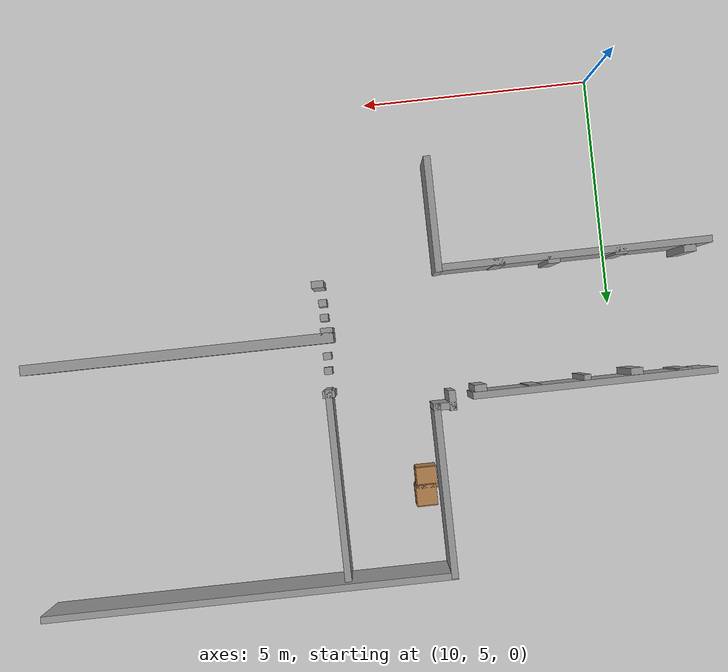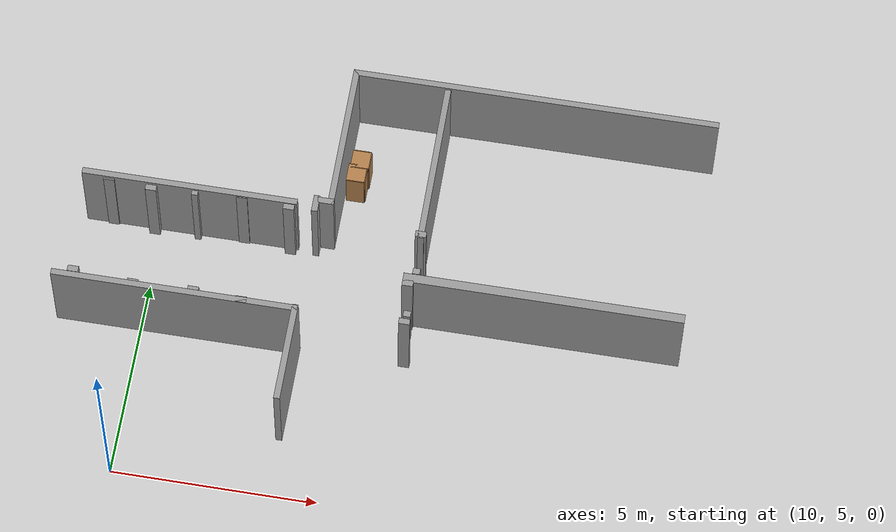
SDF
<sdf version="1.7">
 <world name="default">
  <model name="ground_plane">
   <static>1</static>
   <link name="link">
    <collision name="collision">
     <geometry><plane><normal>0 0 1</normal><size>100 100</size></plane></geometry>
     <surface>
      <contact><collide_bitmask>65535</collide_bitmask></contact>
      <friction><ode><mu>100</mu><mu2>50</mu2></ode></friction>
     </surface>
    </collision>
    <visual name="visual">
     <cast_shadows>0</cast_shadows>
     <geometry><plane><normal>0 0 1</normal><size>100 100</size></plane></geometry>
     <material>
      <script><uri>file://media/materials/scripts/gazebo.material</uri><name>Gazebo/Grey</name></script>
     </material>
    </visual>
   </link>
  </model>
  <model name="cabinet_clone_clone_1">
   <static>1</static>
   <link name="cabinet_bottom_plate">
    <inertial>
     <pose>0 0 -1 0 -0 0</pose>
     <inertia><ixx>2.05</ixx><ixy>0</ixy><ixz>0</ixz><iyy>2.05</iyy><iyz>0</iyz><izz>2.05</izz></inertia>
     <mass>25</mass>
    </inertial>
    <collision name="cabinet_bottom_plate_geom">
     <pose>0 0 0.01 0 -0 0</pose>
     <geometry><box><size>0.45 0.45 0.02</size></box></geometry>
    </collision>
    <visual name="cabinet_bottom_plate_geom_visual">
     <pose>0 0 0.01 0 -0 0</pose>
     <geometry><box><size>0.45 0.45 0.02</size></box></geometry>
     <material>
      <script><uri>file://media/materials/scripts/gazebo.material</uri><name>Gazebo/Wood</name></script>
     </material>
    </visual>
    <collision name="cabinet_bottom_plate_geom_cabinet_back_plate">
     <pose>0.235 0 0.51 0 -0 0</pose>
     <geometry><box><size>0.02 0.45 1.02</size></box></geometry>
    </collision>
    <visual name="cabinet_bottom_plate_geom_cabinet_back_plate_visual">
     <pose>0.235 0 0.51 0 -0 0</pose>
     <geometry><box><size>0.02 0.45 1.02</size></box></geometry>
     <material>
      <script><uri>file://media/materials/scripts/gazebo.material</uri><name>Gazebo/Wood</name></script>
     </material>
    </visual>
    <collision name="cabinet_bottom_plate_geom_cabinet_left_plate">
     <pose>0 0.235 0.51 0 -0 0</pose>
     <geometry><box><size>0.45 0.02 1.02</size></box></geometry>
    </collision>
    <visual name="cabinet_bottom_plate_geom_cabinet_left_plate_visual">
     <pose>0 0.235 0.51 0 -0 0</pose>
     <geometry><box><size>0.45 0.02 1.02</size></box></geometry>
     <material>
      <script><uri>file://media/materials/scripts/gazebo.material</uri><name>Gazebo/Wood</name></script>
     </material>
    </visual>
    <collision name="cabinet_bottom_plate_geom_cabinet_middle_plate">
     <pose>0 0 0.51 0 -0 0</pose>
     <geometry><box><size>0.45 0.45 0.02</size></box></geometry>
    </collision>
    <visual name="cabinet_bottom_plate_geom_cabinet_middle_plate_visual">
     <pose>0 0 0.51 0 -0 0</pose>
     <geometry><box><size>0.45 0.45 0.02</size></box></geometry>
     <material>
      <script><uri>file://media/materials/scripts/gazebo.material</uri><name>Gazebo/Wood</name></script>
     </material>
    </visual>
    <collision name="cabinet_bottom_plate_geom_cabinet_right_plate">
     <pose>0 -0.235 0.51 0 -0 0</pose>
     <geometry><box><size>0.45 0.02 1.02</size></box></geometry>
    </collision>
    <visual name="cabinet_bottom_plate_geom_cabinet_right_plate_visual">
     <pose>0 -0.235 0.51 0 -0 0</pose>
     <geometry><box><size>0.45 0.02 1.02</size></box></geometry>
     <material>
      <script><uri>file://media/materials/scripts/gazebo.material</uri><name>Gazebo/Wood</name></script>
     </material>
    </visual>
    <collision name="cabinet_bottom_plate_geom_cabinet_top_plate">
     <pose>0 0 1.01 0 -0 0</pose>
     <geometry><box><size>0.45 0.45 0.02</size></box></geometry>
    </collision>
    <visual name="cabinet_bottom_plate_geom_cabinet_top_plate_visual">
     <pose>0 0 1.01 0 -0 0</pose>
     <geometry><box><size>0.45 0.45 0.02</size></box></geometry>
     <material>
      <script><uri>file://media/materials/scripts/gazebo.material</uri><name>Gazebo/Wood</name></script>
     </material>
    </visual>
   </link>
   <pose>14.5476 13.8121 0 0 -0 0</pose>
  </model>
  <model name="cabinet_clone_clone_2">
   <static>1</static>
   <link name="cabinet_bottom_plate">
    <inertial>
     <pose>0 0 -1 0 -0 0</pose>
     <inertia><ixx>2.05</ixx><ixy>0</ixy><ixz>0</ixz><iyy>2.05</iyy><iyz>0</iyz><izz>2.05</izz></inertia>
     <mass>25</mass>
    </inertial>
    <collision name="cabinet_bottom_plate_geom">
     <pose>0 0 0.01 0 -0 0</pose>
     <geometry><box><size>0.45 0.45 0.02</size></box></geometry>
    </collision>
    <visual name="cabinet_bottom_plate_geom_visual">
     <pose>0 0 0.01 0 -0 0</pose>
     <geometry><box><size>0.45 0.45 0.02</size></box></geometry>
     <material>
      <script><uri>file://media/materials/scripts/gazebo.material</uri><name>Gazebo/Wood</name></script>
     </material>
    </visual>
    <collision name="cabinet_bottom_plate_geom_cabinet_back_plate">
     <pose>0.235 0 0.51 0 -0 0</pose>
     <geometry><box><size>0.02 0.45 1.02</size></box></geometry>
    </collision>
    <visual name="cabinet_bottom_plate_geom_cabinet_back_plate_visual">
     <pose>0.235 0 0.51 0 -0 0</pose>
     <geometry><box><size>0.02 0.45 1.02</size></box></geometry>
     <material>
      <script><uri>file://media/materials/scripts/gazebo.material</uri><name>Gazebo/Wood</name></script>
     </material>
    </visual>
    <collision name="cabinet_bottom_plate_geom_cabinet_left_plate">
     <pose>0 0.235 0.51 0 -0 0</pose>
     <geometry><box><size>0.45 0.02 1.02</size></box></geometry>
    </collision>
    <visual name="cabinet_bottom_plate_geom_cabinet_left_plate_visual">
     <pose>0 0.235 0.51 0 -0 0</pose>
     <geometry><box><size>0.45 0.02 1.02</size></box></geometry>
     <material>
      <script><uri>file://media/materials/scripts/gazebo.material</uri><name>Gazebo/Wood</name></script>
     </material>
    </visual>
    <collision name="cabinet_bottom_plate_geom_cabinet_middle_plate">
     <pose>0 0 0.51 0 -0 0</pose>
     <geometry><box><size>0.45 0.45 0.02</size></box></geometry>
    </collision>
    <visual name="cabinet_bottom_plate_geom_cabinet_middle_plate_visual">
     <pose>0 0 0.51 0 -0 0</pose>
     <geometry><box><size>0.45 0.45 0.02</size></box></geometry>
     <material>
      <script><uri>file://media/materials/scripts/gazebo.material</uri><name>Gazebo/Wood</name></script>
     </material>
    </visual>
    <collision name="cabinet_bottom_plate_geom_cabinet_right_plate">
     <pose>0 -0.235 0.51 0 -0 0</pose>
     <geometry><box><size>0.45 0.02 1.02</size></box></geometry>
    </collision>
    <visual name="cabinet_bottom_plate_geom_cabinet_right_plate_visual">
     <pose>0 -0.235 0.51 0 -0 0</pose>
     <geometry><box><size>0.45 0.02 1.02</size></box></geometry>
     <material>
      <script><uri>file://media/materials/scripts/gazebo.material</uri><name>Gazebo/Wood</name></script>
     </material>
    </visual>
    <collision name="cabinet_bottom_plate_geom_cabinet_top_plate">
     <pose>0 0 1.01 0 -0 0</pose>
     <geometry><box><size>0.45 0.45 0.02</size></box></geometry>
    </collision>
    <visual name="cabinet_bottom_plate_geom_cabinet_top_plate_visual">
     <pose>0 0 1.01 0 -0 0</pose>
     <geometry><box><size>0.45 0.45 0.02</size></box></geometry>
     <material>
      <script><uri>file://media/materials/scripts/gazebo.material</uri><name>Gazebo/Wood</name></script>
     </material>
    </visual>
   </link>
   <pose>14.5091 13.4246 0 0 -0 0</pose>
  </model>
  <model name="unit_box_clone_1_clone_0_clone_0_clone_2">
   <pose>16.3819 9.68374 0.64423 0 0 -0.000198</pose>
   <link name="link">
    <inertial>
     <mass>1</mass>
     <inertia>
      <ixx>0.166667</ixx>
      <ixy>0</ixy>
      <ixz>0</ixz>
      <iyy>0.166667</iyy>
      <iyz>0</iyz>
      <izz>0.166667</izz>
     </inertia>
    </inertial>
    <collision name="collision"><geometry><box><size>0.179333 0.158753 1.28846</size></box></geometry></collision>
    <visual name="visual">
     <geometry><box><size>0.179333 0.158753 1.28846</size></box></geometry>
     <material>
      <script><name>Gazebo/Grey</name><uri>file://media/materials/scripts/gazebo.material</uri></script>
     </material>
    </visual>
   </link>
  </model>
  <model name="unit_box_clone_1_clone_0_clone_0_clone_3">
   <pose>16.3832 9.36059 0.64423 0 0 -0.000198</pose>
   <link name="link">
    <inertial>
     <mass>1</mass>
     <inertia>
      <ixx>0.166667</ixx>
      <ixy>0</ixy>
      <ixz>0</ixz>
      <iyy>0.166667</iyy>
      <iyz>0</iyz>
      <izz>0.166667</izz>
     </inertia>
    </inertial>
    <collision name="collision"><geometry><box><size>0.179333 0.158753 1.28846</size></box></geometry></collision>
    <visual name="visual">
     <geometry><box><size>0.179333 0.158753 1.28846</size></box></geometry>
     <material>
      <script><name>Gazebo/Grey</name><uri>file://media/materials/scripts/gazebo.material</uri></script>
     </material>
    </visual>
   </link>
  </model>
  <model name="unit_box_clone_1_clone_0_clone_0_clone_4">
   <pose>16.4181 10.8551 0.64423 0 0 -0.000198</pose>
   <link name="link">
    <inertial>
     <mass>1</mass>
     <inertia>
      <ixx>0.166667</ixx>
      <ixy>0</ixy>
      <ixz>0</ixz>
      <iyy>0.166667</iyy>
      <iyz>0</iyz>
      <izz>0.166667</izz>
     </inertia>
    </inertial>
    <collision name="collision"><geometry><box><size>0.179333 0.158753 1.28846</size></box></geometry></collision>
    <visual name="visual">
     <geometry><box><size>0.179333 0.158753 1.28846</size></box></geometry>
     <material>
      <script><name>Gazebo/Grey</name><uri>file://media/materials/scripts/gazebo.material</uri></script>
     </material>
    </visual>
   </link>
  </model>
  <model name="unit_box_clone_1_clone_0_clone_0_clone_5">
   <pose>16.4031 10.5311 0.64423 0 0 -0.000198</pose>
   <link name="link">
    <inertial>
     <mass>1</mass>
     <inertia>
      <ixx>0.166667</ixx>
      <ixy>0</ixy>
      <ixz>0</ixz>
      <iyy>0.166667</iyy>
      <iyz>0</iyz>
      <izz>0.166667</izz>
     </inertia>
    </inertial>
    <collision name="collision"><geometry><box><size>0.179333 0.158753 1.28846</size></box></geometry></collision>
    <visual name="visual">
     <geometry><box><size>0.179333 0.158753 1.28846</size></box></geometry>
     <material>
      <script><name>Gazebo/Grey</name><uri>file://media/materials/scripts/gazebo.material</uri></script>
     </material>
    </visual>
   </link>
  </model>
  <model name="rastech_map_03">
   <link name="Wall_26">
    <pose>5.28336 2.73832 0 0 -0 1.5708</pose>
    <visual name="Wall_26_Visual">
     <pose>0 0 1.25 0 -0 0</pose>
     <geometry><box><size>2.5 0.15 2.5</size></box></geometry>
     <material>
      <script><uri>file://media/materials/scripts/gazebo.material</uri><name>Gazebo/Grey</name></script>
      <ambient>1 1 1 1</ambient>
      <shader type="pixel"/>
     </material>
     <meta><layer>0</layer></meta>
    </visual>
    <collision name="Wall_26_Collision">
     <pose>0 0 1.25 0 -0 0</pose>
     <geometry><box><size>2.5 0.15 2.5</size></box></geometry>
     <surface>
      <friction>
       <ode><mu>1</mu><mu2>1</mu2><fdir1>0 0 0</fdir1><slip1>0</slip1><slip2>0</slip2></ode>
       <torsional>
        <coefficient>1</coefficient>
        <patch_radius>0</patch_radius>
        <surface_radius>0</surface_radius>
        <use_patch_radius>1</use_patch_radius>
        <ode><slip>0</slip></ode>
       </torsional>
      </friction>
      <bounce><restitution_coefficient>0</restitution_coefficient><threshold>1e+06</threshold></bounce>
      <contact>
       <collide_without_contact>0</collide_without_contact>
       <collide_without_contact_bitmask>1</collide_without_contact_bitmask>
       <collide_bitmask>1</collide_bitmask>
       <ode>
        <soft_cfm>0</soft_cfm>
        <soft_erp>0.2</soft_erp>
        <kp>1e+13</kp>
        <kd>1</kd>
        <max_vel>0.01</max_vel>
        <min_depth>0</min_depth>
       </ode>
       <bullet>
        <split_impulse>1</split_impulse>
        <split_impulse_penetration_threshold>-0.01</split_impulse_penetration_threshold>
        <soft_cfm>0</soft_cfm>
        <soft_erp>0.2</soft_erp>
        <kp>1e+13</kp>
        <kd>1</kd>
       </bullet>
      </contact>
     </surface>
    </collision>
   </link>
   <link name="Wall_27">
    <pose>3.98347 3.91331 0 0 -0 3.14159</pose>
    <inertial>
     <inertia><ixx>0</ixx><ixy>0</ixy><ixz>0</ixz><iyy>0</iyy><iyz>0</iyz><izz>0</izz></inertia>
     <mass>0</mass>
    </inertial>
    <visual name="Wall_27_Visual">
     <pose>0 0 1.25 0 -0 0</pose>
     <geometry><box><size>0.265883 0.15 2.5</size></box></geometry>
     <material>
      <script><uri>file://media/materials/scripts/gazebo.material</uri><name>Gazebo/Grey</name></script>
      <ambient>1 1 1 1</ambient>
      <shader type="pixel"/>
     </material>
     <meta><layer>0</layer></meta>
    </visual>
    <collision name="Wall_27_Collision">
     <pose>0 0 1.25 0 -0 0</pose>
     <geometry><box><size>0.265883 0.15 2.5</size></box></geometry>
     <surface>
      <friction>
       <ode><mu>1</mu><mu2>1</mu2><fdir1>0 0 0</fdir1><slip1>0</slip1><slip2>0</slip2></ode>
       <torsional>
        <coefficient>1</coefficient>
        <patch_radius>0</patch_radius>
        <surface_radius>0</surface_radius>
        <use_patch_radius>1</use_patch_radius>
        <ode><slip>0</slip></ode>
       </torsional>
      </friction>
      <bounce><restitution_coefficient>0</restitution_coefficient><threshold>1e+06</threshold></bounce>
      <contact>
       <collide_without_contact>0</collide_without_contact>
       <collide_without_contact_bitmask>1</collide_without_contact_bitmask>
       <collide_bitmask>1</collide_bitmask>
       <ode>
        <soft_cfm>0</soft_cfm>
        <soft_erp>0.2</soft_erp>
        <kp>1e+13</kp>
        <kd>1</kd>
        <max_vel>0.01</max_vel>
        <min_depth>0</min_depth>
       </ode>
       <bullet>
        <split_impulse>1</split_impulse>
        <split_impulse_penetration_threshold>-0.01</split_impulse_penetration_threshold>
        <soft_cfm>0</soft_cfm>
        <soft_erp>0.2</soft_erp>
        <kp>1e+13</kp>
        <kd>1</kd>
       </bullet>
      </contact>
     </surface>
    </collision>
   </link>
   <link name="Wall_27_clone">
    <pose>1.35341 3.94617 0 0 -0 3.14159</pose>
    <inertial>
     <inertia><ixx>0</ixx><ixy>0</ixy><ixz>0</ixz><iyy>0</iyy><iyz>0</iyz><izz>0</izz></inertia>
     <mass>0</mass>
    </inertial>
    <visual name="Wall_27_Visual">
     <pose>0 0 1.25 0 -0 0</pose>
     <geometry><box><size>0.265883 0.15 2.5</size></box></geometry>
     <material>
      <script><uri>file://media/materials/scripts/gazebo.material</uri><name>Gazebo/Grey</name></script>
      <ambient>1 1 1 1</ambient>
      <shader type="pixel"/>
     </material>
     <meta><layer>0</layer></meta>
    </visual>
    <collision name="Wall_27_Collision">
     <pose>0 0 1.25 0 -0 0</pose>
     <geometry><box><size>0.265883 0.15 2.5</size></box></geometry>
     <surface>
      <friction>
       <ode><mu>1</mu><mu2>1</mu2><fdir1>0 0 0</fdir1><slip1>0</slip1><slip2>0</slip2></ode>
       <torsional>
        <coefficient>1</coefficient>
        <patch_radius>0</patch_radius>
        <surface_radius>0</surface_radius>
        <use_patch_radius>1</use_patch_radius>
        <ode><slip>0</slip></ode>
       </torsional>
      </friction>
      <bounce><restitution_coefficient>0</restitution_coefficient><threshold>1e+06</threshold></bounce>
      <contact>
       <collide_without_contact>0</collide_without_contact>
       <collide_without_contact_bitmask>1</collide_without_contact_bitmask>
       <collide_bitmask>1</collide_bitmask>
       <ode>
        <soft_cfm>0</soft_cfm>
        <soft_erp>0.2</soft_erp>
        <kp>1e+13</kp>
        <kd>1</kd>
        <max_vel>0.01</max_vel>
        <min_depth>0</min_depth>
       </ode>
       <bullet>
        <split_impulse>1</split_impulse>
        <split_impulse_penetration_threshold>-0.01</split_impulse_penetration_threshold>
        <soft_cfm>0</soft_cfm>
        <soft_erp>0.2</soft_erp>
        <kp>1e+13</kp>
        <kd>1</kd>
       </bullet>
      </contact>
     </surface>
    </collision>
   </link>
   <link name="Wall_27_clone_0">
    <pose>2.36192 3.89981 0 0 -0 3.14159</pose>
    <inertial>
     <inertia><ixx>0</ixx><ixy>0</ixy><ixz>0</ixz><iyy>0</iyy><iyz>0</iyz><izz>0</izz></inertia>
     <mass>0</mass>
    </inertial>
    <visual name="Wall_27_Visual">
     <pose>0 0 1.25 0 -0 0</pose>
     <geometry><box><size>5.95009 0.15 2.5</size></box></geometry>
     <material>
      <script><uri>file://media/materials/scripts/gazebo.material</uri><name>Gazebo/Grey</name></script>
      <ambient>1 1 1 1</ambient>
      <shader type="pixel"/>
     </material>
     <meta><layer>0</layer></meta>
    </visual>
    <collision name="Wall_27_Collision">
     <pose>0 0 1.25 0 -0 0</pose>
     <geometry><box><size>5.95009 0.15 2.5</size></box></geometry>
     <surface>
      <friction>
       <ode><mu>1</mu><mu2>1</mu2><fdir1>0 0 0</fdir1><slip1>0</slip1><slip2>0</slip2></ode>
       <torsional>
        <coefficient>1</coefficient>
        <patch_radius>0</patch_radius>
        <surface_radius>0</surface_radius>
        <use_patch_radius>1</use_patch_radius>
        <ode><slip>0</slip></ode>
       </torsional>
      </friction>
      <bounce><restitution_coefficient>0</restitution_coefficient><threshold>1e+06</threshold></bounce>
      <contact>
       <collide_without_contact>0</collide_without_contact>
       <collide_without_contact_bitmask>1</collide_without_contact_bitmask>
       <collide_bitmask>1</collide_bitmask>
       <ode>
        <soft_cfm>0</soft_cfm>
        <soft_erp>0.2</soft_erp>
        <kp>1e+13</kp>
        <kd>1</kd>
        <max_vel>0.01</max_vel>
        <min_depth>0</min_depth>
       </ode>
       <bullet>
        <split_impulse>1</split_impulse>
        <split_impulse_penetration_threshold>-0.01</split_impulse_penetration_threshold>
        <soft_cfm>0</soft_cfm>
        <soft_erp>0.2</soft_erp>
        <kp>1e+13</kp>
        <kd>1</kd>
       </bullet>
      </contact>
     </surface>
    </collision>
   </link>
   <link name="Wall_27_clone_1">
    <pose>2.81168 3.98758 0 0 -0 3.14159</pose>
    <inertial>
     <inertia><ixx>0</ixx><ixy>0</ixy><ixz>0</ixz><iyy>0</iyy><iyz>0</iyz><izz>0</izz></inertia>
     <mass>0</mass>
    </inertial>
    <visual name="Wall_27_Visual">
     <pose>0 0 1.25 0 -0 0</pose>
     <geometry><box><size>0.265883 0.15 2.5</size></box></geometry>
     <material>
      <script><uri>file://media/materials/scripts/gazebo.material</uri><name>Gazebo/Grey</name></script>
      <ambient>1 1 1 1</ambient>
      <shader type="pixel"/>
     </material>
     <meta><layer>0</layer></meta>
    </visual>
    <collision name="Wall_27_Collision">
     <pose>0 0 1.25 0 -0 0</pose>
     <geometry><box><size>0.265883 0.15 2.5</size></box></geometry>
     <surface>
      <friction>
       <ode><mu>1</mu><mu2>1</mu2><fdir1>0 0 0</fdir1><slip1>0</slip1><slip2>0</slip2></ode>
       <torsional>
        <coefficient>1</coefficient>
        <patch_radius>0</patch_radius>
        <surface_radius>0</surface_radius>
        <use_patch_radius>1</use_patch_radius>
        <ode><slip>0</slip></ode>
       </torsional>
      </friction>
      <bounce><restitution_coefficient>0</restitution_coefficient><threshold>1e+06</threshold></bounce>
      <contact>
       <collide_without_contact>0</collide_without_contact>
       <collide_without_contact_bitmask>1</collide_without_contact_bitmask>
       <collide_bitmask>1</collide_bitmask>
       <ode>
        <soft_cfm>0</soft_cfm>
        <soft_erp>0.2</soft_erp>
        <kp>1e+13</kp>
        <kd>1</kd>
        <max_vel>0.01</max_vel>
        <min_depth>0</min_depth>
       </ode>
       <bullet>
        <split_impulse>1</split_impulse>
        <split_impulse_penetration_threshold>-0.01</split_impulse_penetration_threshold>
        <soft_cfm>0</soft_cfm>
        <soft_erp>0.2</soft_erp>
        <kp>1e+13</kp>
        <kd>1</kd>
       </bullet>
      </contact>
     </surface>
    </collision>
   </link>
   <link name="Wall_27_clone_2">
    <pose>-0.109983 4.05501 0 0 -0 3.14159</pose>
    <inertial>
     <inertia><ixx>0</ixx><ixy>0</ixy><ixz>0</ixz><iyy>0</iyy><iyz>0</iyz><izz>0</izz></inertia>
     <mass>0</mass>
    </inertial>
    <visual name="Wall_27_Visual">
     <pose>0 0 1.25 0 -0 0</pose>
     <geometry><box><size>0.265883 0.15 2.5</size></box></geometry>
     <material>
      <script><uri>file://media/materials/scripts/gazebo.material</uri><name>Gazebo/Grey</name></script>
      <ambient>1 1 1 1</ambient>
      <shader type="pixel"/>
     </material>
     <meta><layer>0</layer></meta>
    </visual>
    <collision name="Wall_27_Collision">
     <pose>0 0 1.25 0 -0 0</pose>
     <geometry><box><size>0.265883 0.15 2.5</size></box></geometry>
     <surface>
      <friction>
       <ode><mu>1</mu><mu2>1</mu2><fdir1>0 0 0</fdir1><slip1>0</slip1><slip2>0</slip2></ode>
       <torsional>
        <coefficient>1</coefficient>
        <patch_radius>0</patch_radius>
        <surface_radius>0</surface_radius>
        <use_patch_radius>1</use_patch_radius>
        <ode><slip>0</slip></ode>
       </torsional>
      </friction>
      <bounce><restitution_coefficient>0</restitution_coefficient><threshold>1e+06</threshold></bounce>
      <contact>
       <collide_without_contact>0</collide_without_contact>
       <collide_without_contact_bitmask>1</collide_without_contact_bitmask>
       <collide_bitmask>1</collide_bitmask>
       <ode>
        <soft_cfm>0</soft_cfm>
        <soft_erp>0.2</soft_erp>
        <kp>1e+13</kp>
        <kd>1</kd>
        <max_vel>0.01</max_vel>
        <min_depth>0</min_depth>
       </ode>
       <bullet>
        <split_impulse>1</split_impulse>
        <split_impulse_penetration_threshold>-0.01</split_impulse_penetration_threshold>
        <soft_cfm>0</soft_cfm>
        <soft_erp>0.2</soft_erp>
        <kp>1e+13</kp>
        <kd>1</kd>
       </bullet>
      </contact>
     </surface>
    </collision>
   </link>
   <link name="Wall_27_clone_3">
    <pose>4.66104 6.5577 0 0 -0 3.14159</pose>
    <inertial>
     <inertia><ixx>0</ixx><ixy>0</ixy><ixz>0</ixz><iyy>0</iyy><iyz>0</iyz><izz>0</izz></inertia>
     <mass>0</mass>
    </inertial>
    <visual name="Wall_27_Visual">
     <pose>0 0 1.25 0 -0 0</pose>
     <geometry><box><size>0.265883 0.15 2.5</size></box></geometry>
     <material>
      <script><uri>file://media/materials/scripts/gazebo.material</uri><name>Gazebo/Grey</name></script>
      <ambient>1 1 1 1</ambient>
      <shader type="pixel"/>
     </material>
     <meta><layer>0</layer></meta>
    </visual>
    <collision name="Wall_27_Collision">
     <pose>0 0 1.25 0 -0 0</pose>
     <geometry><box><size>0.265883 0.15 2.5</size></box></geometry>
     <surface>
      <friction>
       <ode><mu>1</mu><mu2>1</mu2><fdir1>0 0 0</fdir1><slip1>0</slip1><slip2>0</slip2></ode>
       <torsional>
        <coefficient>1</coefficient>
        <patch_radius>0</patch_radius>
        <surface_radius>0</surface_radius>
        <use_patch_radius>1</use_patch_radius>
        <ode><slip>0</slip></ode>
       </torsional>
      </friction>
      <bounce><restitution_coefficient>0</restitution_coefficient><threshold>1e+06</threshold></bounce>
      <contact>
       <collide_without_contact>0</collide_without_contact>
       <collide_without_contact_bitmask>1</collide_without_contact_bitmask>
       <collide_bitmask>1</collide_bitmask>
       <ode>
        <soft_cfm>0</soft_cfm>
        <soft_erp>0.2</soft_erp>
        <kp>1e+13</kp>
        <kd>1</kd>
        <max_vel>0.01</max_vel>
        <min_depth>0</min_depth>
       </ode>
       <bullet>
        <split_impulse>1</split_impulse>
        <split_impulse_penetration_threshold>-0.01</split_impulse_penetration_threshold>
        <soft_cfm>0</soft_cfm>
        <soft_erp>0.2</soft_erp>
        <kp>1e+13</kp>
        <kd>1</kd>
       </bullet>
      </contact>
     </surface>
    </collision>
   </link>
   <link name="Wall_27_clone_4">
    <pose>3.49772 6.67842 0 0 -0 3.14159</pose>
    <inertial>
     <inertia><ixx>0</ixx><ixy>0</ixy><ixz>0</ixz><iyy>0</iyy><iyz>0</iyz><izz>0</izz></inertia>
     <mass>0</mass>
    </inertial>
    <visual name="Wall_27_Visual">
     <pose>0 0 1.25 0 -0 0</pose>
     <geometry><box><size>0.265883 0.15 2.5</size></box></geometry>
     <material>
      <script><uri>file://media/materials/scripts/gazebo.material</uri><name>Gazebo/Grey</name></script>
      <ambient>1 1 1 1</ambient>
      <shader type="pixel"/>
     </material>
     <meta><layer>0</layer></meta>
    </visual>
    <collision name="Wall_27_Collision">
     <pose>0 0 1.25 0 -0 0</pose>
     <geometry><box><size>0.265883 0.15 2.5</size></box></geometry>
     <surface>
      <friction>
       <ode><mu>1</mu><mu2>1</mu2><fdir1>0 0 0</fdir1><slip1>0</slip1><slip2>0</slip2></ode>
       <torsional>
        <coefficient>1</coefficient>
        <patch_radius>0</patch_radius>
        <surface_radius>0</surface_radius>
        <use_patch_radius>1</use_patch_radius>
        <ode><slip>0</slip></ode>
       </torsional>
      </friction>
      <bounce><restitution_coefficient>0</restitution_coefficient><threshold>1e+06</threshold></bounce>
      <contact>
       <collide_without_contact>0</collide_without_contact>
       <collide_without_contact_bitmask>1</collide_without_contact_bitmask>
       <collide_bitmask>1</collide_bitmask>
       <ode>
        <soft_cfm>0</soft_cfm>
        <soft_erp>0.2</soft_erp>
        <kp>1e+13</kp>
        <kd>1</kd>
        <max_vel>0.01</max_vel>
        <min_depth>0</min_depth>
       </ode>
       <bullet>
        <split_impulse>1</split_impulse>
        <split_impulse_penetration_threshold>-0.01</split_impulse_penetration_threshold>
        <soft_cfm>0</soft_cfm>
        <soft_erp>0.2</soft_erp>
        <kp>1e+13</kp>
        <kd>1</kd>
       </bullet>
      </contact>
     </surface>
    </collision>
   </link>
   <link name="Wall_27_clone_4_clone">
    <pose>7.90875 6.34816 0 0 -0 3.14159</pose>
    <inertial>
     <inertia><ixx>0</ixx><ixy>0</ixy><ixz>0</ixz><iyy>0</iyy><iyz>0</iyz><izz>0</izz></inertia>
     <mass>0</mass>
    </inertial>
    <visual name="Wall_27_Visual">
     <pose>0 0 1.25 0 -0 0</pose>
     <geometry><box><size>0.265883 0.15 2.5</size></box></geometry>
     <material>
      <script><uri>file://media/materials/scripts/gazebo.material</uri><name>Gazebo/Grey</name></script>
      <ambient>1 1 1 1</ambient>
      <shader type="pixel"/>
     </material>
     <meta><layer>0</layer></meta>
    </visual>
    <collision name="Wall_27_Collision">
     <pose>0 0 1.25 0 -0 0</pose>
     <geometry><box><size>0.265883 0.15 2.5</size></box></geometry>
     <surface>
      <friction>
       <ode><mu>1</mu><mu2>1</mu2><fdir1>0 0 0</fdir1><slip1>0</slip1><slip2>0</slip2></ode>
       <torsional>
        <coefficient>1</coefficient>
        <patch_radius>0</patch_radius>
        <surface_radius>0</surface_radius>
        <use_patch_radius>1</use_patch_radius>
        <ode><slip>0</slip></ode>
       </torsional>
      </friction>
      <bounce><restitution_coefficient>0</restitution_coefficient><threshold>1e+06</threshold></bounce>
      <contact>
       <collide_without_contact>0</collide_without_contact>
       <collide_without_contact_bitmask>1</collide_without_contact_bitmask>
       <collide_bitmask>1</collide_bitmask>
       <ode>
        <soft_cfm>0</soft_cfm>
        <soft_erp>0.2</soft_erp>
        <kp>1e+13</kp>
        <kd>1</kd>
        <max_vel>0.01</max_vel>
        <min_depth>0</min_depth>
       </ode>
       <bullet>
        <split_impulse>1</split_impulse>
        <split_impulse_penetration_threshold>-0.01</split_impulse_penetration_threshold>
        <soft_cfm>0</soft_cfm>
        <soft_erp>0.2</soft_erp>
        <kp>1e+13</kp>
        <kd>1</kd>
       </bullet>
      </contact>
     </surface>
    </collision>
   </link>
   <link name="Wall_27_clone_4_clone_0">
    <pose>7.81341 4.99556 0 0 -0 3.14159</pose>
    <inertial>
     <inertia><ixx>0</ixx><ixy>0</ixy><ixz>0</ixz><iyy>0</iyy><iyz>0</iyz><izz>0</izz></inertia>
     <mass>0</mass>
    </inertial>
    <visual name="Wall_27_Visual">
     <pose>0 0 1.25 0 -0 0</pose>
     <geometry><box><size>0.265883 0.15 2.5</size></box></geometry>
     <material>
      <script><uri>file://media/materials/scripts/gazebo.material</uri><name>Gazebo/Grey</name></script>
      <ambient>1 1 1 1</ambient>
      <shader type="pixel"/>
     </material>
     <meta><layer>0</layer></meta>
    </visual>
    <collision name="Wall_27_Collision">
     <pose>0 0 1.25 0 -0 0</pose>
     <geometry><box><size>0.265883 0.15 2.5</size></box></geometry>
     <surface>
      <friction>
       <ode><mu>1</mu><mu2>1</mu2><fdir1>0 0 0</fdir1><slip1>0</slip1><slip2>0</slip2></ode>
       <torsional>
        <coefficient>1</coefficient>
        <patch_radius>0</patch_radius>
        <surface_radius>0</surface_radius>
        <use_patch_radius>1</use_patch_radius>
        <ode><slip>0</slip></ode>
       </torsional>
      </friction>
      <bounce><restitution_coefficient>0</restitution_coefficient><threshold>1e+06</threshold></bounce>
      <contact>
       <collide_without_contact>0</collide_without_contact>
       <collide_without_contact_bitmask>1</collide_without_contact_bitmask>
       <collide_bitmask>1</collide_bitmask>
       <ode>
        <soft_cfm>0</soft_cfm>
        <soft_erp>0.2</soft_erp>
        <kp>1e+13</kp>
        <kd>1</kd>
        <max_vel>0.01</max_vel>
        <min_depth>0</min_depth>
       </ode>
       <bullet>
        <split_impulse>1</split_impulse>
        <split_impulse_penetration_threshold>-0.01</split_impulse_penetration_threshold>
        <soft_cfm>0</soft_cfm>
        <soft_erp>0.2</soft_erp>
        <kp>1e+13</kp>
        <kd>1</kd>
       </bullet>
      </contact>
     </surface>
    </collision>
   </link>
   <link name="Wall_27_clone_4_clone_1">
    <pose>7.90209 3.97734 0 0 -0 3.14159</pose>
    <inertial>
     <inertia><ixx>0</ixx><ixy>0</ixy><ixz>0</ixz><iyy>0</iyy><iyz>0</iyz><izz>0</izz></inertia>
     <mass>0</mass>
    </inertial>
    <visual name="Wall_27_Visual">
     <pose>0 0 1.25 0 -0 0</pose>
     <geometry><box><size>0.265883 0.15 2.5</size></box></geometry>
     <material>
      <script><uri>file://media/materials/scripts/gazebo.material</uri><name>Gazebo/Grey</name></script>
      <ambient>1 1 1 1</ambient>
      <shader type="pixel"/>
     </material>
     <meta><layer>0</layer></meta>
    </visual>
    <collision name="Wall_27_Collision">
     <pose>0 0 1.25 0 -0 0</pose>
     <geometry><box><size>0.265883 0.15 2.5</size></box></geometry>
     <surface>
      <friction>
       <ode><mu>1</mu><mu2>1</mu2><fdir1>0 0 0</fdir1><slip1>0</slip1><slip2>0</slip2></ode>
       <torsional>
        <coefficient>1</coefficient>
        <patch_radius>0</patch_radius>
        <surface_radius>0</surface_radius>
        <use_patch_radius>1</use_patch_radius>
        <ode><slip>0</slip></ode>
       </torsional>
      </friction>
      <bounce><restitution_coefficient>0</restitution_coefficient><threshold>1e+06</threshold></bounce>
      <contact>
       <collide_without_contact>0</collide_without_contact>
       <collide_without_contact_bitmask>1</collide_without_contact_bitmask>
       <collide_bitmask>1</collide_bitmask>
       <ode>
        <soft_cfm>0</soft_cfm>
        <soft_erp>0.2</soft_erp>
        <kp>1e+13</kp>
        <kd>1</kd>
        <max_vel>0.01</max_vel>
        <min_depth>0</min_depth>
       </ode>
       <bullet>
        <split_impulse>1</split_impulse>
        <split_impulse_penetration_threshold>-0.01</split_impulse_penetration_threshold>
        <soft_cfm>0</soft_cfm>
        <soft_erp>0.2</soft_erp>
        <kp>1e+13</kp>
        <kd>1</kd>
       </bullet>
      </contact>
     </surface>
    </collision>
   </link>
   <link name="Wall_27_clone_5">
    <pose>1.28739 6.55567 -0.061813 0 -0 3.14159</pose>
    <inertial>
     <inertia><ixx>0</ixx><ixy>0</ixy><ixz>0</ixz><iyy>0</iyy><iyz>0</iyz><izz>0</izz></inertia>
     <mass>0</mass>
    </inertial>
    <visual name="Wall_27_Visual">
     <pose>0 0 1.25 0 -0 0</pose>
     <geometry><box><size>0.265883 0.15 2.5</size></box></geometry>
     <material>
      <script><uri>file://media/materials/scripts/gazebo.material</uri><name>Gazebo/Grey</name></script>
      <ambient>1 1 1 1</ambient>
      <shader type="pixel"/>
     </material>
     <meta><layer>0</layer></meta>
    </visual>
    <collision name="Wall_27_Collision">
     <pose>0 0 1.25 0 -0 0</pose>
     <geometry><box><size>0.265883 0.15 2.5</size></box></geometry>
     <surface>
      <friction>
       <ode><mu>1</mu><mu2>1</mu2><fdir1>0 0 0</fdir1><slip1>0</slip1><slip2>0</slip2></ode>
       <torsional>
        <coefficient>1</coefficient>
        <patch_radius>0</patch_radius>
        <surface_radius>0</surface_radius>
        <use_patch_radius>1</use_patch_radius>
        <ode><slip>0</slip></ode>
       </torsional>
      </friction>
      <bounce><restitution_coefficient>0</restitution_coefficient><threshold>1e+06</threshold></bounce>
      <contact>
       <collide_without_contact>0</collide_without_contact>
       <collide_without_contact_bitmask>1</collide_without_contact_bitmask>
       <collide_bitmask>1</collide_bitmask>
       <ode>
        <soft_cfm>0</soft_cfm>
        <soft_erp>0.2</soft_erp>
        <kp>1e+13</kp>
        <kd>1</kd>
        <max_vel>0.01</max_vel>
        <min_depth>0</min_depth>
       </ode>
       <bullet>
        <split_impulse>1</split_impulse>
        <split_impulse_penetration_threshold>-0.01</split_impulse_penetration_threshold>
        <soft_cfm>0</soft_cfm>
        <soft_erp>0.2</soft_erp>
        <kp>1e+13</kp>
        <kd>1</kd>
       </bullet>
      </contact>
     </surface>
    </collision>
   </link>
   <link name="Wall_27_clone_6">
    <pose>0.243744 6.66821 -0.056288 0 -0 3.14159</pose>
    <inertial>
     <inertia><ixx>0</ixx><ixy>0</ixy><ixz>0</ixz><iyy>0</iyy><iyz>0</iyz><izz>0</izz></inertia>
     <mass>0</mass>
    </inertial>
    <visual name="Wall_27_Visual">
     <pose>0 0 1.25 0 -0 0</pose>
     <geometry><box><size>0.265883 0.15 2.5</size></box></geometry>
     <material>
      <script><uri>file://media/materials/scripts/gazebo.material</uri><name>Gazebo/Grey</name></script>
      <ambient>1 1 1 1</ambient>
      <shader type="pixel"/>
     </material>
     <meta><layer>0</layer></meta>
    </visual>
    <collision name="Wall_27_Collision">
     <pose>0 0 1.25 0 -0 0</pose>
     <geometry><box><size>0.265883 0.15 2.5</size></box></geometry>
     <surface>
      <friction>
       <ode><mu>1</mu><mu2>1</mu2><fdir1>0 0 0</fdir1><slip1>0</slip1><slip2>0</slip2></ode>
       <torsional>
        <coefficient>1</coefficient>
        <patch_radius>0</patch_radius>
        <surface_radius>0</surface_radius>
        <use_patch_radius>1</use_patch_radius>
        <ode><slip>0</slip></ode>
       </torsional>
      </friction>
      <bounce><restitution_coefficient>0</restitution_coefficient><threshold>1e+06</threshold></bounce>
      <contact>
       <collide_without_contact>0</collide_without_contact>
       <collide_without_contact_bitmask>1</collide_without_contact_bitmask>
       <collide_bitmask>1</collide_bitmask>
       <ode>
        <soft_cfm>0</soft_cfm>
        <soft_erp>0.2</soft_erp>
        <kp>1e+13</kp>
        <kd>1</kd>
        <max_vel>0.01</max_vel>
        <min_depth>0</min_depth>
       </ode>
       <bullet>
        <split_impulse>1</split_impulse>
        <split_impulse_penetration_threshold>-0.01</split_impulse_penetration_threshold>
        <soft_cfm>0</soft_cfm>
        <soft_erp>0.2</soft_erp>
        <kp>1e+13</kp>
        <kd>1</kd>
       </bullet>
      </contact>
     </surface>
    </collision>
   </link>
   <link name="Wall_27_clone_7">
    <pose>2.21057 6.70385 0.027592 0 -0 3.14159</pose>
    <inertial>
     <inertia><ixx>0</ixx><ixy>0</ixy><ixz>0</ixz><iyy>0</iyy><iyz>0</iyz><izz>0</izz></inertia>
     <mass>0</mass>
    </inertial>
    <visual name="Wall_27_Visual">
     <pose>0 0 1.25 0 -0 0</pose>
     <geometry><box><size>5.26523 0.15 2.5</size></box></geometry>
     <material>
      <script><uri>file://media/materials/scripts/gazebo.material</uri><name>Gazebo/Grey</name></script>
      <ambient>1 1 1 1</ambient>
      <shader type="pixel"/>
     </material>
     <meta><layer>0</layer></meta>
    </visual>
    <collision name="Wall_27_Collision">
     <pose>0 0 1.25 0 -0 0</pose>
     <geometry><box><size>5.26523 0.15 2.5</size></box></geometry>
     <surface>
      <friction>
       <ode><mu>1</mu><mu2>1</mu2><fdir1>0 0 0</fdir1><slip1>0</slip1><slip2>0</slip2></ode>
       <torsional>
        <coefficient>1</coefficient>
        <patch_radius>0</patch_radius>
        <surface_radius>0</surface_radius>
        <use_patch_radius>1</use_patch_radius>
        <ode><slip>0</slip></ode>
       </torsional>
      </friction>
      <bounce><restitution_coefficient>0</restitution_coefficient><threshold>1e+06</threshold></bounce>
      <contact>
       <collide_without_contact>0</collide_without_contact>
       <collide_without_contact_bitmask>1</collide_without_contact_bitmask>
       <collide_bitmask>1</collide_bitmask>
       <ode>
        <soft_cfm>0</soft_cfm>
        <soft_erp>0.2</soft_erp>
        <kp>1e+13</kp>
        <kd>1</kd>
        <max_vel>0.01</max_vel>
        <min_depth>0</min_depth>
       </ode>
       <bullet>
        <split_impulse>1</split_impulse>
        <split_impulse_penetration_threshold>-0.01</split_impulse_penetration_threshold>
        <soft_cfm>0</soft_cfm>
        <soft_erp>0.2</soft_erp>
        <kp>1e+13</kp>
        <kd>1</kd>
       </bullet>
      </contact>
     </surface>
    </collision>
   </link>
   <link name="Wall_30">
    <pose>2.35835 6.58388 -0.031265 0 -0 0</pose>
    <inertial>
     <inertia><ixx>0</ixx><ixy>0</ixy><ixz>0</ixz><iyy>0</iyy><iyz>0</iyz><izz>0</izz></inertia>
     <mass>0</mass>
    </inertial>
    <visual name="Wall_30_Visual">
     <pose>0 0 1.25 0 -0 0</pose>
     <geometry><box><size>0.151935 0.15 2.5</size></box></geometry>
     <material>
      <script><uri>file://media/materials/scripts/gazebo.material</uri><name>Gazebo/Grey</name></script>
      <ambient>1 1 1 1</ambient>
      <shader type="pixel"/>
     </material>
     <meta><layer>0</layer></meta>
    </visual>
    <collision name="Wall_30_Collision">
     <pose>0 0 1.25 0 -0 0</pose>
     <geometry><box><size>0.151935 0.15 2.5</size></box></geometry>
     <surface>
      <friction>
       <ode><mu>1</mu><mu2>1</mu2><fdir1>0 0 0</fdir1><slip1>0</slip1><slip2>0</slip2></ode>
       <torsional>
        <coefficient>1</coefficient>
        <patch_radius>0</patch_radius>
        <surface_radius>0</surface_radius>
        <use_patch_radius>1</use_patch_radius>
        <ode><slip>0</slip></ode>
       </torsional>
      </friction>
      <bounce><restitution_coefficient>0</restitution_coefficient><threshold>1e+06</threshold></bounce>
      <contact>
       <collide_without_contact>0</collide_without_contact>
       <collide_without_contact_bitmask>1</collide_without_contact_bitmask>
       <collide_bitmask>1</collide_bitmask>
       <ode>
        <soft_cfm>0</soft_cfm>
        <soft_erp>0.2</soft_erp>
        <kp>1e+13</kp>
        <kd>1</kd>
        <max_vel>0.01</max_vel>
        <min_depth>0</min_depth>
       </ode>
       <bullet>
        <split_impulse>1</split_impulse>
        <split_impulse_penetration_threshold>-0.01</split_impulse_penetration_threshold>
        <soft_cfm>0</soft_cfm>
        <soft_erp>0.2</soft_erp>
        <kp>1e+13</kp>
        <kd>1</kd>
       </bullet>
      </contact>
     </surface>
    </collision>
   </link>
   <link name="Wall_31">
    <pose>5.28336 6.75598 0 0 -0 1.5708</pose>
    <inertial>
     <inertia><ixx>0</ixx><ixy>0</ixy><ixz>0</ixz><iyy>0</iyy><iyz>0</iyz><izz>0</izz></inertia>
     <mass>0</mass>
    </inertial>
    <visual name="Wall_31_Visual">
     <pose>0 0 1.25 0 -0 0</pose>
     <geometry><box><size>0.428928 0.15 2.5</size></box></geometry>
     <material>
      <script><uri>file://media/materials/scripts/gazebo.material</uri><name>Gazebo/Grey</name></script>
      <ambient>1 1 1 1</ambient>
      <shader type="pixel"/>
     </material>
     <meta><layer>0</layer></meta>
    </visual>
    <collision name="Wall_31_Collision">
     <pose>0 0 1.25 0 -0 0</pose>
     <geometry><box><size>0.428928 0.15 2.5</size></box></geometry>
     <surface>
      <friction>
       <ode><mu>1</mu><mu2>1</mu2><fdir1>0 0 0</fdir1><slip1>0</slip1><slip2>0</slip2></ode>
       <torsional>
        <coefficient>1</coefficient>
        <patch_radius>0</patch_radius>
        <surface_radius>0</surface_radius>
        <use_patch_radius>1</use_patch_radius>
        <ode><slip>0</slip></ode>
       </torsional>
      </friction>
      <bounce><restitution_coefficient>0</restitution_coefficient><threshold>1e+06</threshold></bounce>
      <contact>
       <collide_without_contact>0</collide_without_contact>
       <collide_without_contact_bitmask>1</collide_without_contact_bitmask>
       <collide_bitmask>1</collide_bitmask>
       <ode>
        <soft_cfm>0</soft_cfm>
        <soft_erp>0.2</soft_erp>
        <kp>1e+13</kp>
        <kd>1</kd>
        <max_vel>0.01</max_vel>
        <min_depth>0</min_depth>
       </ode>
       <bullet>
        <split_impulse>1</split_impulse>
        <split_impulse_penetration_threshold>-0.01</split_impulse_penetration_threshold>
        <soft_cfm>0</soft_cfm>
        <soft_erp>0.2</soft_erp>
        <kp>1e+13</kp>
        <kd>1</kd>
       </bullet>
      </contact>
     </surface>
    </collision>
   </link>
   <link name="Wall_32">
    <pose>5.45836 6.86332 0 0 -0 0</pose>
    <visual name="Wall_32_Visual">
     <pose>0 0 1.25 0 -0 0</pose>
     <geometry><box><size>0.5 0.15 2.5</size></box></geometry>
     <material>
      <script><uri>file://media/materials/scripts/gazebo.material</uri><name>Gazebo/Grey</name></script>
      <ambient>1 1 1 1</ambient>
      <shader type="pixel"/>
     </material>
     <meta><layer>0</layer></meta>
    </visual>
    <collision name="Wall_32_Collision">
     <pose>0 0 1.25 0 -0 0</pose>
     <geometry><box><size>0.5 0.15 2.5</size></box></geometry>
     <surface>
      <friction>
       <ode><mu>1</mu><mu2>1</mu2><fdir1>0 0 0</fdir1><slip1>0</slip1><slip2>0</slip2></ode>
       <torsional>
        <coefficient>1</coefficient>
        <patch_radius>0</patch_radius>
        <surface_radius>0</surface_radius>
        <use_patch_radius>1</use_patch_radius>
        <ode><slip>0</slip></ode>
       </torsional>
      </friction>
      <bounce><restitution_coefficient>0</restitution_coefficient><threshold>1e+06</threshold></bounce>
      <contact>
       <collide_without_contact>0</collide_without_contact>
       <collide_without_contact_bitmask>1</collide_without_contact_bitmask>
       <collide_bitmask>1</collide_bitmask>
       <ode>
        <soft_cfm>0</soft_cfm>
        <soft_erp>0.2</soft_erp>
        <kp>1e+13</kp>
        <kd>1</kd>
        <max_vel>0.01</max_vel>
        <min_depth>0</min_depth>
       </ode>
       <bullet>
        <split_impulse>1</split_impulse>
        <split_impulse_penetration_threshold>-0.01</split_impulse_penetration_threshold>
        <soft_cfm>0</soft_cfm>
        <soft_erp>0.2</soft_erp>
        <kp>1e+13</kp>
        <kd>1</kd>
       </bullet>
      </contact>
     </surface>
    </collision>
   </link>
   <link name="Wall_33">
    <pose>5.63335 8.67196 0 0 -0 1.5708</pose>
    <visual name="Wall_33_Visual">
     <pose>0 0 1.25 0 -0 0</pose>
     <geometry><box><size>3.76727 0.15 2.5</size></box></geometry>
     <material>
      <script><uri>file://media/materials/scripts/gazebo.material</uri><name>Gazebo/Grey</name></script>
      <ambient>1 1 1 1</ambient>
      <shader type="pixel"/>
     </material>
     <meta><layer>0</layer></meta>
    </visual>
    <collision name="Wall_33_Collision">
     <pose>0 0 1.25 0 -0 0</pose>
     <geometry><box><size>3.76727 0.15 2.5</size></box></geometry>
     <surface>
      <friction>
       <ode><mu>1</mu><mu2>1</mu2><fdir1>0 0 0</fdir1><slip1>0</slip1><slip2>0</slip2></ode>
       <torsional>
        <coefficient>1</coefficient>
        <patch_radius>0</patch_radius>
        <surface_radius>0</surface_radius>
        <use_patch_radius>1</use_patch_radius>
        <ode><slip>0</slip></ode>
       </torsional>
      </friction>
      <bounce><restitution_coefficient>0</restitution_coefficient><threshold>1e+06</threshold></bounce>
      <contact>
       <collide_without_contact>0</collide_without_contact>
       <collide_without_contact_bitmask>1</collide_without_contact_bitmask>
       <collide_bitmask>1</collide_bitmask>
       <ode>
        <soft_cfm>0</soft_cfm>
        <soft_erp>0.2</soft_erp>
        <kp>1e+13</kp>
        <kd>1</kd>
        <max_vel>0.01</max_vel>
        <min_depth>0</min_depth>
       </ode>
       <bullet>
        <split_impulse>1</split_impulse>
        <split_impulse_penetration_threshold>-0.01</split_impulse_penetration_threshold>
        <soft_cfm>0</soft_cfm>
        <soft_erp>0.2</soft_erp>
        <kp>1e+13</kp>
        <kd>1</kd>
       </bullet>
      </contact>
     </surface>
    </collision>
   </link>
   <link name="Wall_34">
    <pose>10.0584 10.5007 0 0 -0 0</pose>
    <visual name="Wall_34_Visual">
     <pose>0 0 1.25 0 -0 0</pose>
     <geometry><box><size>9 0.15 2.5</size></box></geometry>
     <material>
      <script><uri>file://media/materials/scripts/gazebo.material</uri><name>Gazebo/Grey</name></script>
      <ambient>1 1 1 1</ambient>
      <shader type="pixel"/>
     </material>
     <meta><layer>0</layer></meta>
    </visual>
    <collision name="Wall_34_Collision">
     <pose>0 0 1.25 0 -0 0</pose>
     <geometry><box><size>9 0.15 2.5</size></box></geometry>
     <surface>
      <friction>
       <ode><mu>1</mu><mu2>1</mu2><fdir1>0 0 0</fdir1><slip1>0</slip1><slip2>0</slip2></ode>
       <torsional>
        <coefficient>1</coefficient>
        <patch_radius>0</patch_radius>
        <surface_radius>0</surface_radius>
        <use_patch_radius>1</use_patch_radius>
        <ode><slip>0</slip></ode>
       </torsional>
      </friction>
      <bounce><restitution_coefficient>0</restitution_coefficient><threshold>1e+06</threshold></bounce>
      <contact>
       <collide_without_contact>0</collide_without_contact>
       <collide_without_contact_bitmask>1</collide_without_contact_bitmask>
       <collide_bitmask>1</collide_bitmask>
       <ode>
        <soft_cfm>0</soft_cfm>
        <soft_erp>0.2</soft_erp>
        <kp>1e+13</kp>
        <kd>1</kd>
        <max_vel>0.01</max_vel>
        <min_depth>0</min_depth>
       </ode>
       <bullet>
        <split_impulse>1</split_impulse>
        <split_impulse_penetration_threshold>-0.01</split_impulse_penetration_threshold>
        <soft_cfm>0</soft_cfm>
        <soft_erp>0.2</soft_erp>
        <kp>1e+13</kp>
        <kd>1</kd>
       </bullet>
      </contact>
     </surface>
    </collision>
   </link>
   <link name="Wall_38">
    <pose>11.0584 5.13921 0 0 -0 3.14159</pose>
    <inertial>
     <inertia><ixx>0</ixx><ixy>0</ixy><ixz>0</ixz><iyy>0</iyy><iyz>0</iyz><izz>0</izz></inertia>
     <mass>0</mass>
    </inertial>
    <visual name="Wall_38_Visual">
     <pose>0 0 1.25 0 -0 0</pose>
     <geometry><box><size>6.75642 0.224944 2.5</size></box></geometry>
     <material>
      <script><uri>file://media/materials/scripts/gazebo.material</uri><name>Gazebo/Grey</name></script>
      <ambient>1 1 1 1</ambient>
      <shader type="pixel"/>
     </material>
     <meta><layer>0</layer></meta>
    </visual>
    <collision name="Wall_38_Collision">
     <pose>0 0 1.25 0 -0 0</pose>
     <geometry><box><size>6.75642 0.224944 2.5</size></box></geometry>
     <surface>
      <friction>
       <ode><mu>1</mu><mu2>1</mu2><fdir1>0 0 0</fdir1><slip1>0</slip1><slip2>0</slip2></ode>
       <torsional>
        <coefficient>1</coefficient>
        <patch_radius>0</patch_radius>
        <surface_radius>0</surface_radius>
        <use_patch_radius>1</use_patch_radius>
        <ode><slip>0</slip></ode>
       </torsional>
      </friction>
      <bounce><restitution_coefficient>0</restitution_coefficient><threshold>1e+06</threshold></bounce>
      <contact>
       <collide_without_contact>0</collide_without_contact>
       <collide_without_contact_bitmask>1</collide_without_contact_bitmask>
       <collide_bitmask>1</collide_bitmask>
       <ode>
        <soft_cfm>0</soft_cfm>
        <soft_erp>0.2</soft_erp>
        <kp>1e+13</kp>
        <kd>1</kd>
        <max_vel>0.01</max_vel>
        <min_depth>0</min_depth>
       </ode>
       <bullet>
        <split_impulse>1</split_impulse>
        <split_impulse_penetration_threshold>-0.01</split_impulse_penetration_threshold>
        <soft_cfm>0</soft_cfm>
        <soft_erp>0.2</soft_erp>
        <kp>1e+13</kp>
        <kd>1</kd>
       </bullet>
      </contact>
     </surface>
    </collision>
   </link>
   <link name="Wall_44">
    <pose>7.91556 8.31434 0 0 -0 1.5708</pose>
    <inertial>
     <inertia><ixx>0</ixx><ixy>0</ixy><ixz>0</ixz><iyy>0</iyy><iyz>0</iyz><izz>0</izz></inertia>
     <mass>0</mass>
    </inertial>
    <visual name="Wall_44_Visual">
     <pose>0 0 1.25 0 -0 0</pose>
     <geometry><box><size>4.13893 0.15 2.5</size></box></geometry>
     <material>
      <script><uri>file://media/materials/scripts/gazebo.material</uri><name>Gazebo/Grey</name></script>
      <ambient>1 1 1 1</ambient>
      <shader type="pixel"/>
     </material>
     <meta><layer>0</layer></meta>
    </visual>
    <collision name="Wall_44_Collision">
     <pose>0 0 1.25 0 -0 0</pose>
     <geometry><box><size>4.13893 0.15 2.5</size></box></geometry>
     <surface>
      <friction>
       <ode><mu>1</mu><mu2>1</mu2><fdir1>0 0 0</fdir1><slip1>0</slip1><slip2>0</slip2></ode>
       <torsional>
        <coefficient>1</coefficient>
        <patch_radius>0</patch_radius>
        <surface_radius>0</surface_radius>
        <use_patch_radius>1</use_patch_radius>
        <ode><slip>0</slip></ode>
       </torsional>
      </friction>
      <bounce><restitution_coefficient>0</restitution_coefficient><threshold>1e+06</threshold></bounce>
      <contact>
       <collide_without_contact>0</collide_without_contact>
       <collide_without_contact_bitmask>1</collide_without_contact_bitmask>
       <collide_bitmask>1</collide_bitmask>
       <ode>
        <soft_cfm>0</soft_cfm>
        <soft_erp>0.2</soft_erp>
        <kp>1e+13</kp>
        <kd>1</kd>
        <max_vel>0.01</max_vel>
        <min_depth>0</min_depth>
       </ode>
       <bullet>
        <split_impulse>1</split_impulse>
        <split_impulse_penetration_threshold>-0.01</split_impulse_penetration_threshold>
        <soft_cfm>0</soft_cfm>
        <soft_erp>0.2</soft_erp>
        <kp>1e+13</kp>
        <kd>1</kd>
       </bullet>
      </contact>
     </surface>
    </collision>
   </link>
   <static>1</static>
   <pose>8.52776 4.9996 -0.217318 0 -0 0</pose>
  </model>
 </world>
</sdf>
